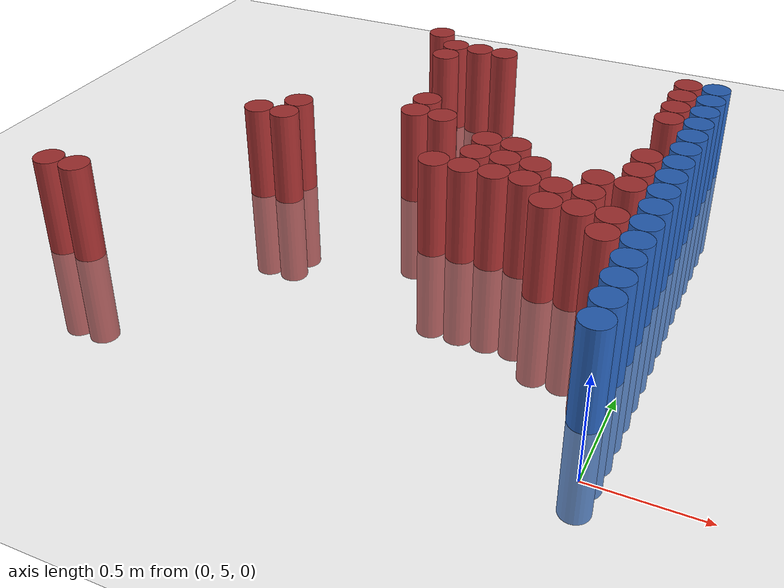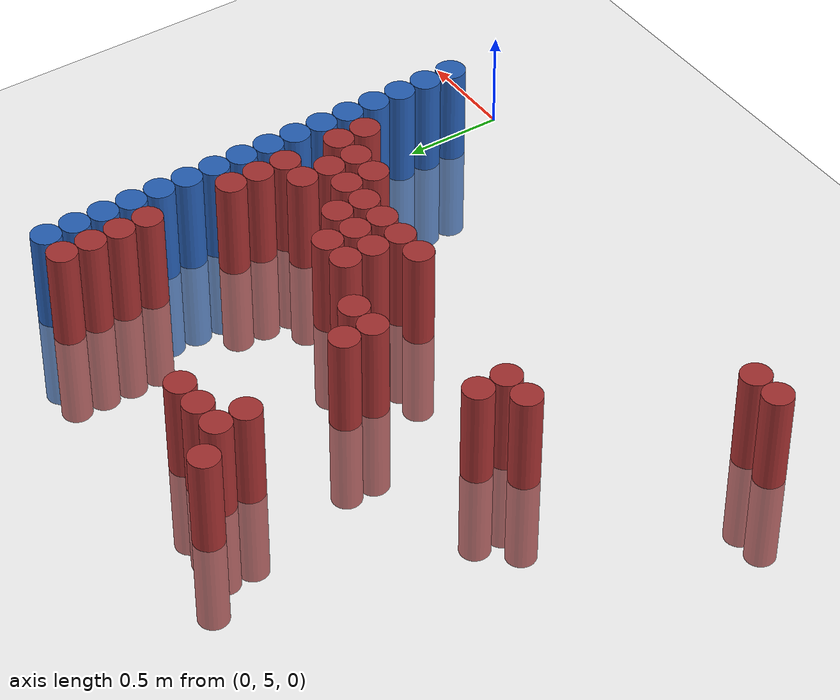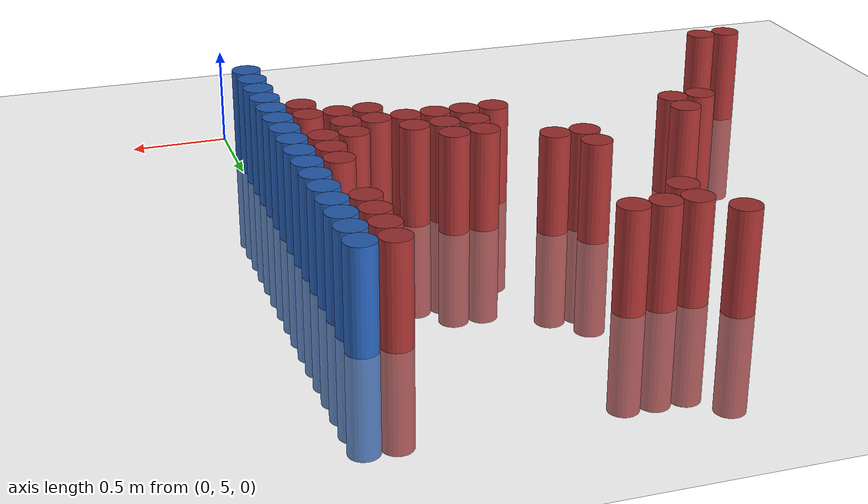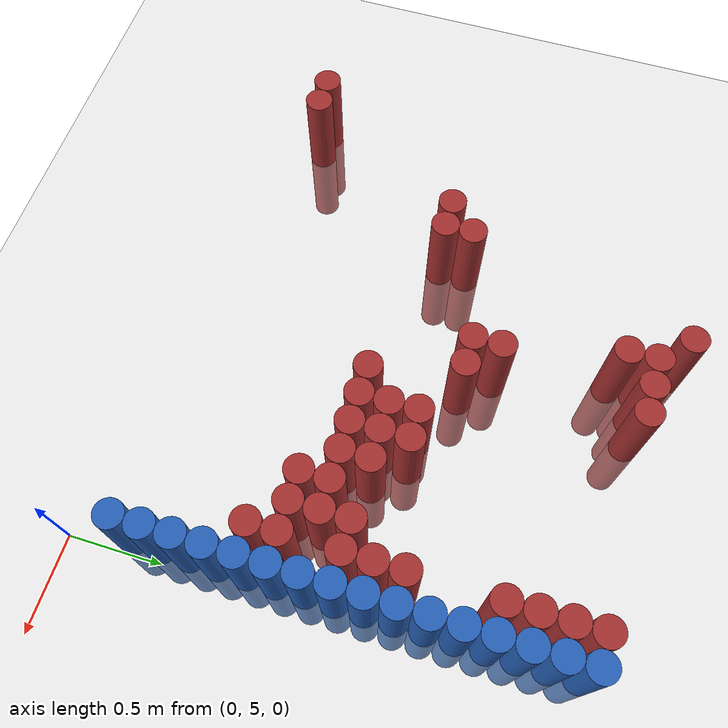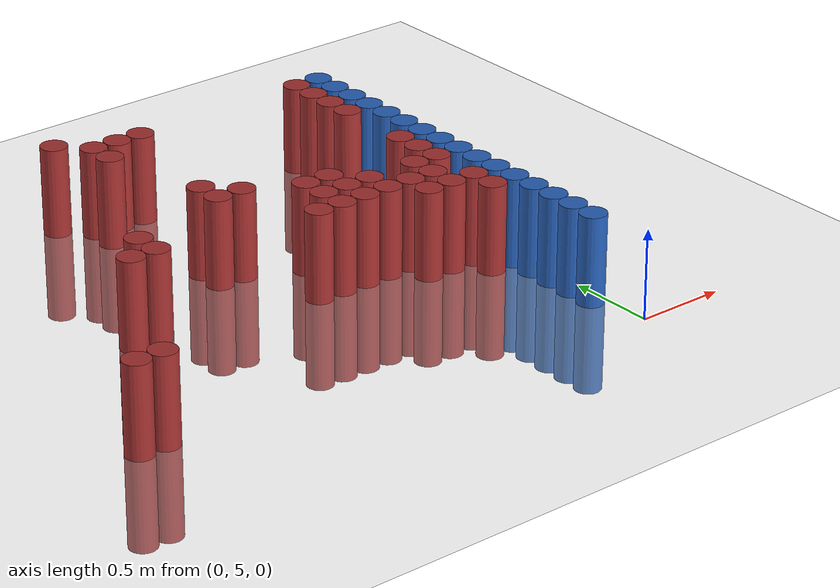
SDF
<sdf version="1.6">
 <world name="default">
  <model name="ground_plane">
   <static>1</static>
   <link name="link">
    <collision name="collision">
     <geometry><plane><normal>0 0 1</normal><size>100 100</size></plane></geometry>
     <surface><friction><ode><mu>100</mu><mu2>50</mu2></ode></friction></surface>
    </collision>
    <visual name="visual">
     <cast_shadows>0</cast_shadows>
     <geometry><plane><normal>0 0 1</normal><size>100 100</size></plane></geometry>
     <material>
      <script><uri>file://media/materials/scripts/gazebo.material</uri><name>Gazebo/Grey</name></script>
     </material>
    </visual>
   </link>
  </model>
  <model name="unit_cylinder_158">
   <static>1</static>
   <pose>-2.775000 5.475000 0.000000 0.000000 0.000000 0.000000</pose>
   <link name="link">
    <inertial>
     <mass>1</mass>
     <inertia><ixx>0.145833</ixx><ixy>0</ixy><ixz>0</ixz><iyy>0.145833</iyy><iyz>0</iyz><izz>0.125</izz></inertia>
    </inertial>
    <collision name="collision">
     <geometry><cylinder><radius>0.075000</radius><length>1</length></cylinder></geometry>
    </collision>
    <visual name="visual">
     <geometry><cylinder><radius>0.075000</radius><length>1</length></cylinder></geometry>
     <material>
      <ambient>0.648000 0.192000 0.192000 1</ambient>
      <diffuse>0.648000 0.192000 0.192000 1</diffuse>
     </material>
     <material>
      <script><name>Gazebo/Grey</name><uri>file://media/materials/scripts/gazebo.material</uri></script>
     </material>
    </visual>
   </link>
  </model>
  <model name="unit_cylinder_160">
   <static>1</static>
   <pose>-2.625000 5.475000 0.000000 0.000000 0.000000 0.000000</pose>
   <link name="link">
    <inertial>
     <mass>1</mass>
     <inertia><ixx>0.145833</ixx><ixy>0</ixy><ixz>0</ixz><iyy>0.145833</iyy><iyz>0</iyz><izz>0.125</izz></inertia>
    </inertial>
    <collision name="collision">
     <geometry><cylinder><radius>0.075000</radius><length>1</length></cylinder></geometry>
    </collision>
    <visual name="visual">
     <geometry><cylinder><radius>0.075000</radius><length>1</length></cylinder></geometry>
     <material>
      <ambient>0.648000 0.192000 0.192000 1</ambient>
      <diffuse>0.648000 0.192000 0.192000 1</diffuse>
     </material>
     <material>
      <script><name>Gazebo/Grey</name><uri>file://media/materials/scripts/gazebo.material</uri></script>
     </material>
    </visual>
   </link>
  </model>
  <model name="unit_cylinder_162">
   <static>1</static>
   <pose>-2.175000 6.375000 0.000000 0.000000 0.000000 0.000000</pose>
   <link name="link">
    <inertial>
     <mass>1</mass>
     <inertia><ixx>0.145833</ixx><ixy>0</ixy><ixz>0</ixz><iyy>0.145833</iyy><iyz>0</iyz><izz>0.125</izz></inertia>
    </inertial>
    <collision name="collision">
     <geometry><cylinder><radius>0.075000</radius><length>1</length></cylinder></geometry>
    </collision>
    <visual name="visual">
     <geometry><cylinder><radius>0.075000</radius><length>1</length></cylinder></geometry>
     <material>
      <ambient>0.648000 0.192000 0.192000 1</ambient>
      <diffuse>0.648000 0.192000 0.192000 1</diffuse>
     </material>
     <material>
      <script><name>Gazebo/Grey</name><uri>file://media/materials/scripts/gazebo.material</uri></script>
     </material>
    </visual>
   </link>
  </model>
  <model name="unit_cylinder_165">
   <static>1</static>
   <pose>-2.025000 6.375000 0.000000 0.000000 0.000000 0.000000</pose>
   <link name="link">
    <inertial>
     <mass>1</mass>
     <inertia><ixx>0.145833</ixx><ixy>0</ixy><ixz>0</ixz><iyy>0.145833</iyy><iyz>0</iyz><izz>0.125</izz></inertia>
    </inertial>
    <collision name="collision">
     <geometry><cylinder><radius>0.075000</radius><length>1</length></cylinder></geometry>
    </collision>
    <visual name="visual">
     <geometry><cylinder><radius>0.075000</radius><length>1</length></cylinder></geometry>
     <material>
      <ambient>0.648000 0.192000 0.192000 1</ambient>
      <diffuse>0.648000 0.192000 0.192000 1</diffuse>
     </material>
     <material>
      <script><name>Gazebo/Grey</name><uri>file://media/materials/scripts/gazebo.material</uri></script>
     </material>
    </visual>
   </link>
  </model>
  <model name="unit_cylinder_166">
   <static>1</static>
   <pose>-2.025000 6.525000 0.000000 0.000000 0.000000 0.000000</pose>
   <link name="link">
    <inertial>
     <mass>1</mass>
     <inertia><ixx>0.145833</ixx><ixy>0</ixy><ixz>0</ixz><iyy>0.145833</iyy><iyz>0</iyz><izz>0.125</izz></inertia>
    </inertial>
    <collision name="collision">
     <geometry><cylinder><radius>0.075000</radius><length>1</length></cylinder></geometry>
    </collision>
    <visual name="visual">
     <geometry><cylinder><radius>0.075000</radius><length>1</length></cylinder></geometry>
     <material>
      <ambient>0.648000 0.192000 0.192000 1</ambient>
      <diffuse>0.648000 0.192000 0.192000 1</diffuse>
     </material>
     <material>
      <script><name>Gazebo/Grey</name><uri>file://media/materials/scripts/gazebo.material</uri></script>
     </material>
    </visual>
   </link>
  </model>
  <model name="unit_cylinder_167">
   <static>1</static>
   <pose>-1.725000 7.725000 0.000000 0.000000 0.000000 0.000000</pose>
   <link name="link">
    <inertial>
     <mass>1</mass>
     <inertia><ixx>0.145833</ixx><ixy>0</ixy><ixz>0</ixz><iyy>0.145833</iyy><iyz>0</iyz><izz>0.125</izz></inertia>
    </inertial>
    <collision name="collision">
     <geometry><cylinder><radius>0.075000</radius><length>1</length></cylinder></geometry>
    </collision>
    <visual name="visual">
     <geometry><cylinder><radius>0.075000</radius><length>1</length></cylinder></geometry>
     <material>
      <ambient>0.648000 0.192000 0.192000 1</ambient>
      <diffuse>0.648000 0.192000 0.192000 1</diffuse>
     </material>
     <material>
      <script><name>Gazebo/Grey</name><uri>file://media/materials/scripts/gazebo.material</uri></script>
     </material>
    </visual>
   </link>
  </model>
  <model name="unit_cylinder_169">
   <static>1</static>
   <pose>-1.575000 7.425000 0.000000 0.000000 0.000000 0.000000</pose>
   <link name="link">
    <inertial>
     <mass>1</mass>
     <inertia><ixx>0.145833</ixx><ixy>0</ixy><ixz>0</ixz><iyy>0.145833</iyy><iyz>0</iyz><izz>0.125</izz></inertia>
    </inertial>
    <collision name="collision">
     <geometry><cylinder><radius>0.075000</radius><length>1</length></cylinder></geometry>
    </collision>
    <visual name="visual">
     <geometry><cylinder><radius>0.075000</radius><length>1</length></cylinder></geometry>
     <material>
      <ambient>0.648000 0.192000 0.192000 1</ambient>
      <diffuse>0.648000 0.192000 0.192000 1</diffuse>
     </material>
     <material>
      <script><name>Gazebo/Grey</name><uri>file://media/materials/scripts/gazebo.material</uri></script>
     </material>
    </visual>
   </link>
  </model>
  <model name="unit_cylinder_170">
   <static>1</static>
   <pose>-1.575000 7.575000 0.000000 0.000000 0.000000 0.000000</pose>
   <link name="link">
    <inertial>
     <mass>1</mass>
     <inertia><ixx>0.145833</ixx><ixy>0</ixy><ixz>0</ixz><iyy>0.145833</iyy><iyz>0</iyz><izz>0.125</izz></inertia>
    </inertial>
    <collision name="collision">
     <geometry><cylinder><radius>0.075000</radius><length>1</length></cylinder></geometry>
    </collision>
    <visual name="visual">
     <geometry><cylinder><radius>0.075000</radius><length>1</length></cylinder></geometry>
     <material>
      <ambient>0.648000 0.192000 0.192000 1</ambient>
      <diffuse>0.648000 0.192000 0.192000 1</diffuse>
     </material>
     <material>
      <script><name>Gazebo/Grey</name><uri>file://media/materials/scripts/gazebo.material</uri></script>
     </material>
    </visual>
   </link>
  </model>
  <model name="unit_cylinder_173">
   <static>1</static>
   <pose>-1.425000 6.675000 0.000000 0.000000 0.000000 0.000000</pose>
   <link name="link">
    <inertial>
     <mass>1</mass>
     <inertia><ixx>0.145833</ixx><ixy>0</ixy><ixz>0</ixz><iyy>0.145833</iyy><iyz>0</iyz><izz>0.125</izz></inertia>
    </inertial>
    <collision name="collision">
     <geometry><cylinder><radius>0.075000</radius><length>1</length></cylinder></geometry>
    </collision>
    <visual name="visual">
     <geometry><cylinder><radius>0.075000</radius><length>1</length></cylinder></geometry>
     <material>
      <ambient>0.648000 0.192000 0.192000 1</ambient>
      <diffuse>0.648000 0.192000 0.192000 1</diffuse>
     </material>
     <material>
      <script><name>Gazebo/Grey</name><uri>file://media/materials/scripts/gazebo.material</uri></script>
     </material>
    </visual>
   </link>
  </model>
  <model name="unit_cylinder_174">
   <static>1</static>
   <pose>-1.425000 6.825000 0.000000 0.000000 0.000000 0.000000</pose>
   <link name="link">
    <inertial>
     <mass>1</mass>
     <inertia><ixx>0.145833</ixx><ixy>0</ixy><ixz>0</ixz><iyy>0.145833</iyy><iyz>0</iyz><izz>0.125</izz></inertia>
    </inertial>
    <collision name="collision">
     <geometry><cylinder><radius>0.075000</radius><length>1</length></cylinder></geometry>
    </collision>
    <visual name="visual">
     <geometry><cylinder><radius>0.075000</radius><length>1</length></cylinder></geometry>
     <material>
      <ambient>0.648000 0.192000 0.192000 1</ambient>
      <diffuse>0.648000 0.192000 0.192000 1</diffuse>
     </material>
     <material>
      <script><name>Gazebo/Grey</name><uri>file://media/materials/scripts/gazebo.material</uri></script>
     </material>
    </visual>
   </link>
  </model>
  <model name="unit_cylinder_175">
   <static>1</static>
   <pose>-1.425000 7.575000 0.000000 0.000000 0.000000 0.000000</pose>
   <link name="link">
    <inertial>
     <mass>1</mass>
     <inertia><ixx>0.145833</ixx><ixy>0</ixy><ixz>0</ixz><iyy>0.145833</iyy><iyz>0</iyz><izz>0.125</izz></inertia>
    </inertial>
    <collision name="collision">
     <geometry><cylinder><radius>0.075000</radius><length>1</length></cylinder></geometry>
    </collision>
    <visual name="visual">
     <geometry><cylinder><radius>0.075000</radius><length>1</length></cylinder></geometry>
     <material>
      <ambient>0.648000 0.192000 0.192000 1</ambient>
      <diffuse>0.648000 0.192000 0.192000 1</diffuse>
     </material>
     <material>
      <script><name>Gazebo/Grey</name><uri>file://media/materials/scripts/gazebo.material</uri></script>
     </material>
    </visual>
   </link>
  </model>
  <model name="unit_cylinder_177">
   <static>1</static>
   <pose>-1.275000 6.675000 0.000000 0.000000 0.000000 0.000000</pose>
   <link name="link">
    <inertial>
     <mass>1</mass>
     <inertia><ixx>0.145833</ixx><ixy>0</ixy><ixz>0</ixz><iyy>0.145833</iyy><iyz>0</iyz><izz>0.125</izz></inertia>
    </inertial>
    <collision name="collision">
     <geometry><cylinder><radius>0.075000</radius><length>1</length></cylinder></geometry>
    </collision>
    <visual name="visual">
     <geometry><cylinder><radius>0.075000</radius><length>1</length></cylinder></geometry>
     <material>
      <ambient>0.648000 0.192000 0.192000 1</ambient>
      <diffuse>0.648000 0.192000 0.192000 1</diffuse>
     </material>
     <material>
      <script><name>Gazebo/Grey</name><uri>file://media/materials/scripts/gazebo.material</uri></script>
     </material>
    </visual>
   </link>
  </model>
  <model name="unit_cylinder_178">
   <static>1</static>
   <pose>-1.275000 7.575000 0.000000 0.000000 0.000000 0.000000</pose>
   <link name="link">
    <inertial>
     <mass>1</mass>
     <inertia><ixx>0.145833</ixx><ixy>0</ixy><ixz>0</ixz><iyy>0.145833</iyy><iyz>0</iyz><izz>0.125</izz></inertia>
    </inertial>
    <collision name="collision">
     <geometry><cylinder><radius>0.075000</radius><length>1</length></cylinder></geometry>
    </collision>
    <visual name="visual">
     <geometry><cylinder><radius>0.075000</radius><length>1</length></cylinder></geometry>
     <material>
      <ambient>0.648000 0.192000 0.192000 1</ambient>
      <diffuse>0.648000 0.192000 0.192000 1</diffuse>
     </material>
     <material>
      <script><name>Gazebo/Grey</name><uri>file://media/materials/scripts/gazebo.material</uri></script>
     </material>
    </visual>
   </link>
  </model>
  <model name="unit_cylinder_181">
   <static>1</static>
   <pose>-1.125000 6.225000 0.000000 0.000000 0.000000 0.000000</pose>
   <link name="link">
    <inertial>
     <mass>1</mass>
     <inertia><ixx>0.145833</ixx><ixy>0</ixy><ixz>0</ixz><iyy>0.145833</iyy><iyz>0</iyz><izz>0.125</izz></inertia>
    </inertial>
    <collision name="collision">
     <geometry><cylinder><radius>0.075000</radius><length>1</length></cylinder></geometry>
    </collision>
    <visual name="visual">
     <geometry><cylinder><radius>0.075000</radius><length>1</length></cylinder></geometry>
     <material>
      <ambient>0.648000 0.192000 0.192000 1</ambient>
      <diffuse>0.648000 0.192000 0.192000 1</diffuse>
     </material>
     <material>
      <script><name>Gazebo/Grey</name><uri>file://media/materials/scripts/gazebo.material</uri></script>
     </material>
    </visual>
   </link>
  </model>
  <model name="unit_cylinder_184">
   <static>1</static>
   <pose>-0.975000 6.225000 0.000000 0.000000 0.000000 0.000000</pose>
   <link name="link">
    <inertial>
     <mass>1</mass>
     <inertia><ixx>0.145833</ixx><ixy>0</ixy><ixz>0</ixz><iyy>0.145833</iyy><iyz>0</iyz><izz>0.125</izz></inertia>
    </inertial>
    <collision name="collision">
     <geometry><cylinder><radius>0.075000</radius><length>1</length></cylinder></geometry>
    </collision>
    <visual name="visual">
     <geometry><cylinder><radius>0.075000</radius><length>1</length></cylinder></geometry>
     <material>
      <ambient>0.648000 0.192000 0.192000 1</ambient>
      <diffuse>0.648000 0.192000 0.192000 1</diffuse>
     </material>
     <material>
      <script><name>Gazebo/Grey</name><uri>file://media/materials/scripts/gazebo.material</uri></script>
     </material>
    </visual>
   </link>
  </model>
  <model name="unit_cylinder_185">
   <static>1</static>
   <pose>-0.975000 6.375000 0.000000 0.000000 0.000000 0.000000</pose>
   <link name="link">
    <inertial>
     <mass>1</mass>
     <inertia><ixx>0.145833</ixx><ixy>0</ixy><ixz>0</ixz><iyy>0.145833</iyy><iyz>0</iyz><izz>0.125</izz></inertia>
    </inertial>
    <collision name="collision">
     <geometry><cylinder><radius>0.075000</radius><length>1</length></cylinder></geometry>
    </collision>
    <visual name="visual">
     <geometry><cylinder><radius>0.075000</radius><length>1</length></cylinder></geometry>
     <material>
      <ambient>0.648000 0.192000 0.192000 1</ambient>
      <diffuse>0.648000 0.192000 0.192000 1</diffuse>
     </material>
     <material>
      <script><name>Gazebo/Grey</name><uri>file://media/materials/scripts/gazebo.material</uri></script>
     </material>
    </visual>
   </link>
  </model>
  <model name="unit_cylinder_186">
   <static>1</static>
   <pose>-0.975000 6.525000 0.000000 0.000000 0.000000 0.000000</pose>
   <link name="link">
    <inertial>
     <mass>1</mass>
     <inertia><ixx>0.145833</ixx><ixy>0</ixy><ixz>0</ixz><iyy>0.145833</iyy><iyz>0</iyz><izz>0.125</izz></inertia>
    </inertial>
    <collision name="collision">
     <geometry><cylinder><radius>0.075000</radius><length>1</length></cylinder></geometry>
    </collision>
    <visual name="visual">
     <geometry><cylinder><radius>0.075000</radius><length>1</length></cylinder></geometry>
     <material>
      <ambient>0.648000 0.192000 0.192000 1</ambient>
      <diffuse>0.648000 0.192000 0.192000 1</diffuse>
     </material>
     <material>
      <script><name>Gazebo/Grey</name><uri>file://media/materials/scripts/gazebo.material</uri></script>
     </material>
    </visual>
   </link>
  </model>
  <model name="unit_cylinder_191">
   <static>1</static>
   <pose>-0.825000 6.225000 0.000000 0.000000 0.000000 0.000000</pose>
   <link name="link">
    <inertial>
     <mass>1</mass>
     <inertia><ixx>0.145833</ixx><ixy>0</ixy><ixz>0</ixz><iyy>0.145833</iyy><iyz>0</iyz><izz>0.125</izz></inertia>
    </inertial>
    <collision name="collision">
     <geometry><cylinder><radius>0.075000</radius><length>1</length></cylinder></geometry>
    </collision>
    <visual name="visual">
     <geometry><cylinder><radius>0.075000</radius><length>1</length></cylinder></geometry>
     <material>
      <ambient>0.648000 0.192000 0.192000 1</ambient>
      <diffuse>0.648000 0.192000 0.192000 1</diffuse>
     </material>
     <material>
      <script><name>Gazebo/Grey</name><uri>file://media/materials/scripts/gazebo.material</uri></script>
     </material>
    </visual>
   </link>
  </model>
  <model name="unit_cylinder_192">
   <static>1</static>
   <pose>-0.825000 6.375000 0.000000 0.000000 0.000000 0.000000</pose>
   <link name="link">
    <inertial>
     <mass>1</mass>
     <inertia><ixx>0.145833</ixx><ixy>0</ixy><ixz>0</ixz><iyy>0.145833</iyy><iyz>0</iyz><izz>0.125</izz></inertia>
    </inertial>
    <collision name="collision">
     <geometry><cylinder><radius>0.075000</radius><length>1</length></cylinder></geometry>
    </collision>
    <visual name="visual">
     <geometry><cylinder><radius>0.075000</radius><length>1</length></cylinder></geometry>
     <material>
      <ambient>0.648000 0.192000 0.192000 1</ambient>
      <diffuse>0.648000 0.192000 0.192000 1</diffuse>
     </material>
     <material>
      <script><name>Gazebo/Grey</name><uri>file://media/materials/scripts/gazebo.material</uri></script>
     </material>
    </visual>
   </link>
  </model>
  <model name="unit_cylinder_193">
   <static>1</static>
   <pose>-0.825000 6.525000 0.000000 0.000000 0.000000 0.000000</pose>
   <link name="link">
    <inertial>
     <mass>1</mass>
     <inertia><ixx>0.145833</ixx><ixy>0</ixy><ixz>0</ixz><iyy>0.145833</iyy><iyz>0</iyz><izz>0.125</izz></inertia>
    </inertial>
    <collision name="collision">
     <geometry><cylinder><radius>0.075000</radius><length>1</length></cylinder></geometry>
    </collision>
    <visual name="visual">
     <geometry><cylinder><radius>0.075000</radius><length>1</length></cylinder></geometry>
     <material>
      <ambient>0.648000 0.192000 0.192000 1</ambient>
      <diffuse>0.648000 0.192000 0.192000 1</diffuse>
     </material>
     <material>
      <script><name>Gazebo/Grey</name><uri>file://media/materials/scripts/gazebo.material</uri></script>
     </material>
    </visual>
   </link>
  </model>
  <model name="unit_cylinder_198">
   <static>1</static>
   <pose>-0.675000 6.225000 0.000000 0.000000 0.000000 0.000000</pose>
   <link name="link">
    <inertial>
     <mass>1</mass>
     <inertia><ixx>0.145833</ixx><ixy>0</ixy><ixz>0</ixz><iyy>0.145833</iyy><iyz>0</iyz><izz>0.125</izz></inertia>
    </inertial>
    <collision name="collision">
     <geometry><cylinder><radius>0.075000</radius><length>1</length></cylinder></geometry>
    </collision>
    <visual name="visual">
     <geometry><cylinder><radius>0.075000</radius><length>1</length></cylinder></geometry>
     <material>
      <ambient>0.648000 0.192000 0.192000 1</ambient>
      <diffuse>0.648000 0.192000 0.192000 1</diffuse>
     </material>
     <material>
      <script><name>Gazebo/Grey</name><uri>file://media/materials/scripts/gazebo.material</uri></script>
     </material>
    </visual>
   </link>
  </model>
  <model name="unit_cylinder_199">
   <static>1</static>
   <pose>-0.675000 6.375000 0.000000 0.000000 0.000000 0.000000</pose>
   <link name="link">
    <inertial>
     <mass>1</mass>
     <inertia><ixx>0.145833</ixx><ixy>0</ixy><ixz>0</ixz><iyy>0.145833</iyy><iyz>0</iyz><izz>0.125</izz></inertia>
    </inertial>
    <collision name="collision">
     <geometry><cylinder><radius>0.075000</radius><length>1</length></cylinder></geometry>
    </collision>
    <visual name="visual">
     <geometry><cylinder><radius>0.075000</radius><length>1</length></cylinder></geometry>
     <material>
      <ambient>0.648000 0.192000 0.192000 1</ambient>
      <diffuse>0.648000 0.192000 0.192000 1</diffuse>
     </material>
     <material>
      <script><name>Gazebo/Grey</name><uri>file://media/materials/scripts/gazebo.material</uri></script>
     </material>
    </visual>
   </link>
  </model>
  <model name="unit_cylinder_202">
   <static>1</static>
   <pose>-0.525000 6.075000 0.000000 0.000000 0.000000 0.000000</pose>
   <link name="link">
    <inertial>
     <mass>1</mass>
     <inertia><ixx>0.145833</ixx><ixy>0</ixy><ixz>0</ixz><iyy>0.145833</iyy><iyz>0</iyz><izz>0.125</izz></inertia>
    </inertial>
    <collision name="collision">
     <geometry><cylinder><radius>0.075000</radius><length>1</length></cylinder></geometry>
    </collision>
    <visual name="visual">
     <geometry><cylinder><radius>0.075000</radius><length>1</length></cylinder></geometry>
     <material>
      <ambient>0.648000 0.192000 0.192000 1</ambient>
      <diffuse>0.648000 0.192000 0.192000 1</diffuse>
     </material>
     <material>
      <script><name>Gazebo/Grey</name><uri>file://media/materials/scripts/gazebo.material</uri></script>
     </material>
    </visual>
   </link>
  </model>
  <model name="unit_cylinder_203">
   <static>1</static>
   <pose>-0.525000 6.225000 0.000000 0.000000 0.000000 0.000000</pose>
   <link name="link">
    <inertial>
     <mass>1</mass>
     <inertia><ixx>0.145833</ixx><ixy>0</ixy><ixz>0</ixz><iyy>0.145833</iyy><iyz>0</iyz><izz>0.125</izz></inertia>
    </inertial>
    <collision name="collision">
     <geometry><cylinder><radius>0.075000</radius><length>1</length></cylinder></geometry>
    </collision>
    <visual name="visual">
     <geometry><cylinder><radius>0.075000</radius><length>1</length></cylinder></geometry>
     <material>
      <ambient>0.648000 0.192000 0.192000 1</ambient>
      <diffuse>0.648000 0.192000 0.192000 1</diffuse>
     </material>
     <material>
      <script><name>Gazebo/Grey</name><uri>file://media/materials/scripts/gazebo.material</uri></script>
     </material>
    </visual>
   </link>
  </model>
  <model name="unit_cylinder_207">
   <static>1</static>
   <pose>-0.375000 6.075000 0.000000 0.000000 0.000000 0.000000</pose>
   <link name="link">
    <inertial>
     <mass>1</mass>
     <inertia><ixx>0.145833</ixx><ixy>0</ixy><ixz>0</ixz><iyy>0.145833</iyy><iyz>0</iyz><izz>0.125</izz></inertia>
    </inertial>
    <collision name="collision">
     <geometry><cylinder><radius>0.075000</radius><length>1</length></cylinder></geometry>
    </collision>
    <visual name="visual">
     <geometry><cylinder><radius>0.075000</radius><length>1</length></cylinder></geometry>
     <material>
      <ambient>0.648000 0.192000 0.192000 1</ambient>
      <diffuse>0.648000 0.192000 0.192000 1</diffuse>
     </material>
     <material>
      <script><name>Gazebo/Grey</name><uri>file://media/materials/scripts/gazebo.material</uri></script>
     </material>
    </visual>
   </link>
  </model>
  <model name="unit_cylinder_208">
   <static>1</static>
   <pose>-0.375000 6.225000 0.000000 0.000000 0.000000 0.000000</pose>
   <link name="link">
    <inertial>
     <mass>1</mass>
     <inertia><ixx>0.145833</ixx><ixy>0</ixy><ixz>0</ixz><iyy>0.145833</iyy><iyz>0</iyz><izz>0.125</izz></inertia>
    </inertial>
    <collision name="collision">
     <geometry><cylinder><radius>0.075000</radius><length>1</length></cylinder></geometry>
    </collision>
    <visual name="visual">
     <geometry><cylinder><radius>0.075000</radius><length>1</length></cylinder></geometry>
     <material>
      <ambient>0.648000 0.192000 0.192000 1</ambient>
      <diffuse>0.648000 0.192000 0.192000 1</diffuse>
     </material>
     <material>
      <script><name>Gazebo/Grey</name><uri>file://media/materials/scripts/gazebo.material</uri></script>
     </material>
    </visual>
   </link>
  </model>
  <model name="unit_cylinder_209">
   <static>1</static>
   <pose>-0.375000 6.375000 0.000000 0.000000 0.000000 0.000000</pose>
   <link name="link">
    <inertial>
     <mass>1</mass>
     <inertia><ixx>0.145833</ixx><ixy>0</ixy><ixz>0</ixz><iyy>0.145833</iyy><iyz>0</iyz><izz>0.125</izz></inertia>
    </inertial>
    <collision name="collision">
     <geometry><cylinder><radius>0.075000</radius><length>1</length></cylinder></geometry>
    </collision>
    <visual name="visual">
     <geometry><cylinder><radius>0.075000</radius><length>1</length></cylinder></geometry>
     <material>
      <ambient>0.648000 0.192000 0.192000 1</ambient>
      <diffuse>0.648000 0.192000 0.192000 1</diffuse>
     </material>
     <material>
      <script><name>Gazebo/Grey</name><uri>file://media/materials/scripts/gazebo.material</uri></script>
     </material>
    </visual>
   </link>
  </model>
  <model name="unit_cylinder_214">
   <static>1</static>
   <pose>-0.225000 5.925000 0.000000 0.000000 0.000000 0.000000</pose>
   <link name="link">
    <inertial>
     <mass>1</mass>
     <inertia><ixx>0.145833</ixx><ixy>0</ixy><ixz>0</ixz><iyy>0.145833</iyy><iyz>0</iyz><izz>0.125</izz></inertia>
    </inertial>
    <collision name="collision">
     <geometry><cylinder><radius>0.075000</radius><length>1</length></cylinder></geometry>
    </collision>
    <visual name="visual">
     <geometry><cylinder><radius>0.075000</radius><length>1</length></cylinder></geometry>
     <material>
      <ambient>0.648000 0.192000 0.192000 1</ambient>
      <diffuse>0.648000 0.192000 0.192000 1</diffuse>
     </material>
     <material>
      <script><name>Gazebo/Grey</name><uri>file://media/materials/scripts/gazebo.material</uri></script>
     </material>
    </visual>
   </link>
  </model>
  <model name="unit_cylinder_215">
   <static>1</static>
   <pose>-0.225000 6.075000 0.000000 0.000000 0.000000 0.000000</pose>
   <link name="link">
    <inertial>
     <mass>1</mass>
     <inertia><ixx>0.145833</ixx><ixy>0</ixy><ixz>0</ixz><iyy>0.145833</iyy><iyz>0</iyz><izz>0.125</izz></inertia>
    </inertial>
    <collision name="collision">
     <geometry><cylinder><radius>0.075000</radius><length>1</length></cylinder></geometry>
    </collision>
    <visual name="visual">
     <geometry><cylinder><radius>0.075000</radius><length>1</length></cylinder></geometry>
     <material>
      <ambient>0.648000 0.192000 0.192000 1</ambient>
      <diffuse>0.648000 0.192000 0.192000 1</diffuse>
     </material>
     <material>
      <script><name>Gazebo/Grey</name><uri>file://media/materials/scripts/gazebo.material</uri></script>
     </material>
    </visual>
   </link>
  </model>
  <model name="unit_cylinder_216">
   <static>1</static>
   <pose>-0.225000 6.375000 0.000000 0.000000 0.000000 0.000000</pose>
   <link name="link">
    <inertial>
     <mass>1</mass>
     <inertia><ixx>0.145833</ixx><ixy>0</ixy><ixz>0</ixz><iyy>0.145833</iyy><iyz>0</iyz><izz>0.125</izz></inertia>
    </inertial>
    <collision name="collision">
     <geometry><cylinder><radius>0.075000</radius><length>1</length></cylinder></geometry>
    </collision>
    <visual name="visual">
     <geometry><cylinder><radius>0.075000</radius><length>1</length></cylinder></geometry>
     <material>
      <ambient>0.648000 0.192000 0.192000 1</ambient>
      <diffuse>0.648000 0.192000 0.192000 1</diffuse>
     </material>
     <material>
      <script><name>Gazebo/Grey</name><uri>file://media/materials/scripts/gazebo.material</uri></script>
     </material>
    </visual>
   </link>
  </model>
  <model name="unit_cylinder_217">
   <static>1</static>
   <pose>-0.225000 6.525000 0.000000 0.000000 0.000000 0.000000</pose>
   <link name="link">
    <inertial>
     <mass>1</mass>
     <inertia><ixx>0.145833</ixx><ixy>0</ixy><ixz>0</ixz><iyy>0.145833</iyy><iyz>0</iyz><izz>0.125</izz></inertia>
    </inertial>
    <collision name="collision">
     <geometry><cylinder><radius>0.075000</radius><length>1</length></cylinder></geometry>
    </collision>
    <visual name="visual">
     <geometry><cylinder><radius>0.075000</radius><length>1</length></cylinder></geometry>
     <material>
      <ambient>0.648000 0.192000 0.192000 1</ambient>
      <diffuse>0.648000 0.192000 0.192000 1</diffuse>
     </material>
     <material>
      <script><name>Gazebo/Grey</name><uri>file://media/materials/scripts/gazebo.material</uri></script>
     </material>
    </visual>
   </link>
  </model>
  <model name="unit_cylinder_218">
   <static>1</static>
   <pose>-0.225000 6.675000 0.000000 0.000000 0.000000 0.000000</pose>
   <link name="link">
    <inertial>
     <mass>1</mass>
     <inertia><ixx>0.145833</ixx><ixy>0</ixy><ixz>0</ixz><iyy>0.145833</iyy><iyz>0</iyz><izz>0.125</izz></inertia>
    </inertial>
    <collision name="collision">
     <geometry><cylinder><radius>0.075000</radius><length>1</length></cylinder></geometry>
    </collision>
    <visual name="visual">
     <geometry><cylinder><radius>0.075000</radius><length>1</length></cylinder></geometry>
     <material>
      <ambient>0.648000 0.192000 0.192000 1</ambient>
      <diffuse>0.648000 0.192000 0.192000 1</diffuse>
     </material>
     <material>
      <script><name>Gazebo/Grey</name><uri>file://media/materials/scripts/gazebo.material</uri></script>
     </material>
    </visual>
   </link>
  </model>
  <model name="unit_cylinder_219">
   <static>1</static>
   <pose>-0.225000 7.125000 0.000000 0.000000 0.000000 0.000000</pose>
   <link name="link">
    <inertial>
     <mass>1</mass>
     <inertia><ixx>0.145833</ixx><ixy>0</ixy><ixz>0</ixz><iyy>0.145833</iyy><iyz>0</iyz><izz>0.125</izz></inertia>
    </inertial>
    <collision name="collision">
     <geometry><cylinder><radius>0.075000</radius><length>1</length></cylinder></geometry>
    </collision>
    <visual name="visual">
     <geometry><cylinder><radius>0.075000</radius><length>1</length></cylinder></geometry>
     <material>
      <ambient>0.648000 0.192000 0.192000 1</ambient>
      <diffuse>0.648000 0.192000 0.192000 1</diffuse>
     </material>
     <material>
      <script><name>Gazebo/Grey</name><uri>file://media/materials/scripts/gazebo.material</uri></script>
     </material>
    </visual>
   </link>
  </model>
  <model name="unit_cylinder_220">
   <static>1</static>
   <pose>-0.225000 7.275000 0.000000 0.000000 0.000000 0.000000</pose>
   <link name="link">
    <inertial>
     <mass>1</mass>
     <inertia><ixx>0.145833</ixx><ixy>0</ixy><ixz>0</ixz><iyy>0.145833</iyy><iyz>0</iyz><izz>0.125</izz></inertia>
    </inertial>
    <collision name="collision">
     <geometry><cylinder><radius>0.075000</radius><length>1</length></cylinder></geometry>
    </collision>
    <visual name="visual">
     <geometry><cylinder><radius>0.075000</radius><length>1</length></cylinder></geometry>
     <material>
      <ambient>0.648000 0.192000 0.192000 1</ambient>
      <diffuse>0.648000 0.192000 0.192000 1</diffuse>
     </material>
     <material>
      <script><name>Gazebo/Grey</name><uri>file://media/materials/scripts/gazebo.material</uri></script>
     </material>
    </visual>
   </link>
  </model>
  <model name="unit_cylinder_221">
   <static>1</static>
   <pose>-0.225000 7.425000 0.000000 0.000000 0.000000 0.000000</pose>
   <link name="link">
    <inertial>
     <mass>1</mass>
     <inertia><ixx>0.145833</ixx><ixy>0</ixy><ixz>0</ixz><iyy>0.145833</iyy><iyz>0</iyz><izz>0.125</izz></inertia>
    </inertial>
    <collision name="collision">
     <geometry><cylinder><radius>0.075000</radius><length>1</length></cylinder></geometry>
    </collision>
    <visual name="visual">
     <geometry><cylinder><radius>0.075000</radius><length>1</length></cylinder></geometry>
     <material>
      <ambient>0.648000 0.192000 0.192000 1</ambient>
      <diffuse>0.648000 0.192000 0.192000 1</diffuse>
     </material>
     <material>
      <script><name>Gazebo/Grey</name><uri>file://media/materials/scripts/gazebo.material</uri></script>
     </material>
    </visual>
   </link>
  </model>
  <model name="unit_cylinder_222">
   <static>1</static>
   <pose>-0.225000 7.575000 0.000000 0.000000 0.000000 0.000000</pose>
   <link name="link">
    <inertial>
     <mass>1</mass>
     <inertia><ixx>0.145833</ixx><ixy>0</ixy><ixz>0</ixz><iyy>0.145833</iyy><iyz>0</iyz><izz>0.125</izz></inertia>
    </inertial>
    <collision name="collision">
     <geometry><cylinder><radius>0.075000</radius><length>1</length></cylinder></geometry>
    </collision>
    <visual name="visual">
     <geometry><cylinder><radius>0.075000</radius><length>1</length></cylinder></geometry>
     <material>
      <ambient>0.648000 0.192000 0.192000 1</ambient>
      <diffuse>0.648000 0.192000 0.192000 1</diffuse>
     </material>
     <material>
      <script><name>Gazebo/Grey</name><uri>file://media/materials/scripts/gazebo.material</uri></script>
     </material>
    </visual>
   </link>
  </model>
  <model name="unit_cylinder_231">
   <static>1</static>
   <pose>-0.075000 5.325000 0.000000 0.000000 0.000000 0.000000</pose>
   <link name="link">
    <inertial>
     <mass>1</mass>
     <inertia><ixx>0.145833</ixx><ixy>0</ixy><ixz>0</ixz><iyy>0.145833</iyy><iyz>0</iyz><izz>0.125</izz></inertia>
    </inertial>
    <collision name="collision">
     <geometry><cylinder><radius>0.075000</radius><length>1</length></cylinder></geometry>
    </collision>
    <visual name="visual">
     <geometry><cylinder><radius>0.075000</radius><length>1</length></cylinder></geometry>
     <material>
      <ambient>0.152000 0.379000 0.720000 1</ambient>
      <diffuse>0.152000 0.379000 0.720000 1</diffuse>
     </material>
     <material>
      <script><name>Gazebo/Grey</name><uri>file://media/materials/scripts/gazebo.material</uri></script>
     </material>
    </visual>
   </link>
  </model>
  <model name="unit_cylinder_232">
   <static>1</static>
   <pose>-0.075000 5.475000 0.000000 0.000000 0.000000 0.000000</pose>
   <link name="link">
    <inertial>
     <mass>1</mass>
     <inertia><ixx>0.145833</ixx><ixy>0</ixy><ixz>0</ixz><iyy>0.145833</iyy><iyz>0</iyz><izz>0.125</izz></inertia>
    </inertial>
    <collision name="collision">
     <geometry><cylinder><radius>0.075000</radius><length>1</length></cylinder></geometry>
    </collision>
    <visual name="visual">
     <geometry><cylinder><radius>0.075000</radius><length>1</length></cylinder></geometry>
     <material>
      <ambient>0.152000 0.379000 0.720000 1</ambient>
      <diffuse>0.152000 0.379000 0.720000 1</diffuse>
     </material>
     <material>
      <script><name>Gazebo/Grey</name><uri>file://media/materials/scripts/gazebo.material</uri></script>
     </material>
    </visual>
   </link>
  </model>
  <model name="unit_cylinder_233">
   <static>1</static>
   <pose>-0.075000 5.625000 0.000000 0.000000 0.000000 0.000000</pose>
   <link name="link">
    <inertial>
     <mass>1</mass>
     <inertia><ixx>0.145833</ixx><ixy>0</ixy><ixz>0</ixz><iyy>0.145833</iyy><iyz>0</iyz><izz>0.125</izz></inertia>
    </inertial>
    <collision name="collision">
     <geometry><cylinder><radius>0.075000</radius><length>1</length></cylinder></geometry>
    </collision>
    <visual name="visual">
     <geometry><cylinder><radius>0.075000</radius><length>1</length></cylinder></geometry>
     <material>
      <ambient>0.152000 0.379000 0.720000 1</ambient>
      <diffuse>0.152000 0.379000 0.720000 1</diffuse>
     </material>
     <material>
      <script><name>Gazebo/Grey</name><uri>file://media/materials/scripts/gazebo.material</uri></script>
     </material>
    </visual>
   </link>
  </model>
  <model name="unit_cylinder_234">
   <static>1</static>
   <pose>-0.075000 5.775000 0.000000 0.000000 0.000000 0.000000</pose>
   <link name="link">
    <inertial>
     <mass>1</mass>
     <inertia><ixx>0.145833</ixx><ixy>0</ixy><ixz>0</ixz><iyy>0.145833</iyy><iyz>0</iyz><izz>0.125</izz></inertia>
    </inertial>
    <collision name="collision">
     <geometry><cylinder><radius>0.075000</radius><length>1</length></cylinder></geometry>
    </collision>
    <visual name="visual">
     <geometry><cylinder><radius>0.075000</radius><length>1</length></cylinder></geometry>
     <material>
      <ambient>0.152000 0.379000 0.720000 1</ambient>
      <diffuse>0.152000 0.379000 0.720000 1</diffuse>
     </material>
     <material>
      <script><name>Gazebo/Grey</name><uri>file://media/materials/scripts/gazebo.material</uri></script>
     </material>
    </visual>
   </link>
  </model>
  <model name="unit_cylinder_235">
   <static>1</static>
   <pose>-0.075000 5.925000 0.000000 0.000000 0.000000 0.000000</pose>
   <link name="link">
    <inertial>
     <mass>1</mass>
     <inertia><ixx>0.145833</ixx><ixy>0</ixy><ixz>0</ixz><iyy>0.145833</iyy><iyz>0</iyz><izz>0.125</izz></inertia>
    </inertial>
    <collision name="collision">
     <geometry><cylinder><radius>0.075000</radius><length>1</length></cylinder></geometry>
    </collision>
    <visual name="visual">
     <geometry><cylinder><radius>0.075000</radius><length>1</length></cylinder></geometry>
     <material>
      <ambient>0.152000 0.379000 0.720000 1</ambient>
      <diffuse>0.152000 0.379000 0.720000 1</diffuse>
     </material>
     <material>
      <script><name>Gazebo/Grey</name><uri>file://media/materials/scripts/gazebo.material</uri></script>
     </material>
    </visual>
   </link>
  </model>
  <model name="unit_cylinder_236">
   <static>1</static>
   <pose>-0.075000 6.075000 0.000000 0.000000 0.000000 0.000000</pose>
   <link name="link">
    <inertial>
     <mass>1</mass>
     <inertia><ixx>0.145833</ixx><ixy>0</ixy><ixz>0</ixz><iyy>0.145833</iyy><iyz>0</iyz><izz>0.125</izz></inertia>
    </inertial>
    <collision name="collision">
     <geometry><cylinder><radius>0.075000</radius><length>1</length></cylinder></geometry>
    </collision>
    <visual name="visual">
     <geometry><cylinder><radius>0.075000</radius><length>1</length></cylinder></geometry>
     <material>
      <ambient>0.152000 0.379000 0.720000 1</ambient>
      <diffuse>0.152000 0.379000 0.720000 1</diffuse>
     </material>
     <material>
      <script><name>Gazebo/Grey</name><uri>file://media/materials/scripts/gazebo.material</uri></script>
     </material>
    </visual>
   </link>
  </model>
  <model name="unit_cylinder_237">
   <static>1</static>
   <pose>-0.075000 6.225000 0.000000 0.000000 0.000000 0.000000</pose>
   <link name="link">
    <inertial>
     <mass>1</mass>
     <inertia><ixx>0.145833</ixx><ixy>0</ixy><ixz>0</ixz><iyy>0.145833</iyy><iyz>0</iyz><izz>0.125</izz></inertia>
    </inertial>
    <collision name="collision">
     <geometry><cylinder><radius>0.075000</radius><length>1</length></cylinder></geometry>
    </collision>
    <visual name="visual">
     <geometry><cylinder><radius>0.075000</radius><length>1</length></cylinder></geometry>
     <material>
      <ambient>0.152000 0.379000 0.720000 1</ambient>
      <diffuse>0.152000 0.379000 0.720000 1</diffuse>
     </material>
     <material>
      <script><name>Gazebo/Grey</name><uri>file://media/materials/scripts/gazebo.material</uri></script>
     </material>
    </visual>
   </link>
  </model>
  <model name="unit_cylinder_238">
   <static>1</static>
   <pose>-0.075000 6.375000 0.000000 0.000000 0.000000 0.000000</pose>
   <link name="link">
    <inertial>
     <mass>1</mass>
     <inertia><ixx>0.145833</ixx><ixy>0</ixy><ixz>0</ixz><iyy>0.145833</iyy><iyz>0</iyz><izz>0.125</izz></inertia>
    </inertial>
    <collision name="collision">
     <geometry><cylinder><radius>0.075000</radius><length>1</length></cylinder></geometry>
    </collision>
    <visual name="visual">
     <geometry><cylinder><radius>0.075000</radius><length>1</length></cylinder></geometry>
     <material>
      <ambient>0.152000 0.379000 0.720000 1</ambient>
      <diffuse>0.152000 0.379000 0.720000 1</diffuse>
     </material>
     <material>
      <script><name>Gazebo/Grey</name><uri>file://media/materials/scripts/gazebo.material</uri></script>
     </material>
    </visual>
   </link>
  </model>
  <model name="unit_cylinder_239">
   <static>1</static>
   <pose>-0.075000 6.525000 0.000000 0.000000 0.000000 0.000000</pose>
   <link name="link">
    <inertial>
     <mass>1</mass>
     <inertia><ixx>0.145833</ixx><ixy>0</ixy><ixz>0</ixz><iyy>0.145833</iyy><iyz>0</iyz><izz>0.125</izz></inertia>
    </inertial>
    <collision name="collision">
     <geometry><cylinder><radius>0.075000</radius><length>1</length></cylinder></geometry>
    </collision>
    <visual name="visual">
     <geometry><cylinder><radius>0.075000</radius><length>1</length></cylinder></geometry>
     <material>
      <ambient>0.152000 0.379000 0.720000 1</ambient>
      <diffuse>0.152000 0.379000 0.720000 1</diffuse>
     </material>
     <material>
      <script><name>Gazebo/Grey</name><uri>file://media/materials/scripts/gazebo.material</uri></script>
     </material>
    </visual>
   </link>
  </model>
  <model name="unit_cylinder_240">
   <static>1</static>
   <pose>-0.075000 6.675000 0.000000 0.000000 0.000000 0.000000</pose>
   <link name="link">
    <inertial>
     <mass>1</mass>
     <inertia><ixx>0.145833</ixx><ixy>0</ixy><ixz>0</ixz><iyy>0.145833</iyy><iyz>0</iyz><izz>0.125</izz></inertia>
    </inertial>
    <collision name="collision">
     <geometry><cylinder><radius>0.075000</radius><length>1</length></cylinder></geometry>
    </collision>
    <visual name="visual">
     <geometry><cylinder><radius>0.075000</radius><length>1</length></cylinder></geometry>
     <material>
      <ambient>0.152000 0.379000 0.720000 1</ambient>
      <diffuse>0.152000 0.379000 0.720000 1</diffuse>
     </material>
     <material>
      <script><name>Gazebo/Grey</name><uri>file://media/materials/scripts/gazebo.material</uri></script>
     </material>
    </visual>
   </link>
  </model>
  <model name="unit_cylinder_241">
   <static>1</static>
   <pose>-0.075000 6.825000 0.000000 0.000000 0.000000 0.000000</pose>
   <link name="link">
    <inertial>
     <mass>1</mass>
     <inertia><ixx>0.145833</ixx><ixy>0</ixy><ixz>0</ixz><iyy>0.145833</iyy><iyz>0</iyz><izz>0.125</izz></inertia>
    </inertial>
    <collision name="collision">
     <geometry><cylinder><radius>0.075000</radius><length>1</length></cylinder></geometry>
    </collision>
    <visual name="visual">
     <geometry><cylinder><radius>0.075000</radius><length>1</length></cylinder></geometry>
     <material>
      <ambient>0.152000 0.379000 0.720000 1</ambient>
      <diffuse>0.152000 0.379000 0.720000 1</diffuse>
     </material>
     <material>
      <script><name>Gazebo/Grey</name><uri>file://media/materials/scripts/gazebo.material</uri></script>
     </material>
    </visual>
   </link>
  </model>
  <model name="unit_cylinder_242">
   <static>1</static>
   <pose>-0.075000 6.975000 0.000000 0.000000 0.000000 0.000000</pose>
   <link name="link">
    <inertial>
     <mass>1</mass>
     <inertia><ixx>0.145833</ixx><ixy>0</ixy><ixz>0</ixz><iyy>0.145833</iyy><iyz>0</iyz><izz>0.125</izz></inertia>
    </inertial>
    <collision name="collision">
     <geometry><cylinder><radius>0.075000</radius><length>1</length></cylinder></geometry>
    </collision>
    <visual name="visual">
     <geometry><cylinder><radius>0.075000</radius><length>1</length></cylinder></geometry>
     <material>
      <ambient>0.152000 0.379000 0.720000 1</ambient>
      <diffuse>0.152000 0.379000 0.720000 1</diffuse>
     </material>
     <material>
      <script><name>Gazebo/Grey</name><uri>file://media/materials/scripts/gazebo.material</uri></script>
     </material>
    </visual>
   </link>
  </model>
  <model name="unit_cylinder_243">
   <static>1</static>
   <pose>-0.075000 7.125000 0.000000 0.000000 0.000000 0.000000</pose>
   <link name="link">
    <inertial>
     <mass>1</mass>
     <inertia><ixx>0.145833</ixx><ixy>0</ixy><ixz>0</ixz><iyy>0.145833</iyy><iyz>0</iyz><izz>0.125</izz></inertia>
    </inertial>
    <collision name="collision">
     <geometry><cylinder><radius>0.075000</radius><length>1</length></cylinder></geometry>
    </collision>
    <visual name="visual">
     <geometry><cylinder><radius>0.075000</radius><length>1</length></cylinder></geometry>
     <material>
      <ambient>0.152000 0.379000 0.720000 1</ambient>
      <diffuse>0.152000 0.379000 0.720000 1</diffuse>
     </material>
     <material>
      <script><name>Gazebo/Grey</name><uri>file://media/materials/scripts/gazebo.material</uri></script>
     </material>
    </visual>
   </link>
  </model>
  <model name="unit_cylinder_244">
   <static>1</static>
   <pose>-0.075000 7.275000 0.000000 0.000000 0.000000 0.000000</pose>
   <link name="link">
    <inertial>
     <mass>1</mass>
     <inertia><ixx>0.145833</ixx><ixy>0</ixy><ixz>0</ixz><iyy>0.145833</iyy><iyz>0</iyz><izz>0.125</izz></inertia>
    </inertial>
    <collision name="collision">
     <geometry><cylinder><radius>0.075000</radius><length>1</length></cylinder></geometry>
    </collision>
    <visual name="visual">
     <geometry><cylinder><radius>0.075000</radius><length>1</length></cylinder></geometry>
     <material>
      <ambient>0.152000 0.379000 0.720000 1</ambient>
      <diffuse>0.152000 0.379000 0.720000 1</diffuse>
     </material>
     <material>
      <script><name>Gazebo/Grey</name><uri>file://media/materials/scripts/gazebo.material</uri></script>
     </material>
    </visual>
   </link>
  </model>
  <model name="unit_cylinder_245">
   <static>1</static>
   <pose>-0.075000 7.425000 0.000000 0.000000 0.000000 0.000000</pose>
   <link name="link">
    <inertial>
     <mass>1</mass>
     <inertia><ixx>0.145833</ixx><ixy>0</ixy><ixz>0</ixz><iyy>0.145833</iyy><iyz>0</iyz><izz>0.125</izz></inertia>
    </inertial>
    <collision name="collision">
     <geometry><cylinder><radius>0.075000</radius><length>1</length></cylinder></geometry>
    </collision>
    <visual name="visual">
     <geometry><cylinder><radius>0.075000</radius><length>1</length></cylinder></geometry>
     <material>
      <ambient>0.152000 0.379000 0.720000 1</ambient>
      <diffuse>0.152000 0.379000 0.720000 1</diffuse>
     </material>
     <material>
      <script><name>Gazebo/Grey</name><uri>file://media/materials/scripts/gazebo.material</uri></script>
     </material>
    </visual>
   </link>
  </model>
  <model name="unit_cylinder_246">
   <static>1</static>
   <pose>-0.075000 7.575000 0.000000 0.000000 0.000000 0.000000</pose>
   <link name="link">
    <inertial>
     <mass>1</mass>
     <inertia><ixx>0.145833</ixx><ixy>0</ixy><ixz>0</ixz><iyy>0.145833</iyy><iyz>0</iyz><izz>0.125</izz></inertia>
    </inertial>
    <collision name="collision">
     <geometry><cylinder><radius>0.075000</radius><length>1</length></cylinder></geometry>
    </collision>
    <visual name="visual">
     <geometry><cylinder><radius>0.075000</radius><length>1</length></cylinder></geometry>
     <material>
      <ambient>0.152000 0.379000 0.720000 1</ambient>
      <diffuse>0.152000 0.379000 0.720000 1</diffuse>
     </material>
     <material>
      <script><name>Gazebo/Grey</name><uri>file://media/materials/scripts/gazebo.material</uri></script>
     </material>
    </visual>
   </link>
  </model>
 </world>
</sdf>
